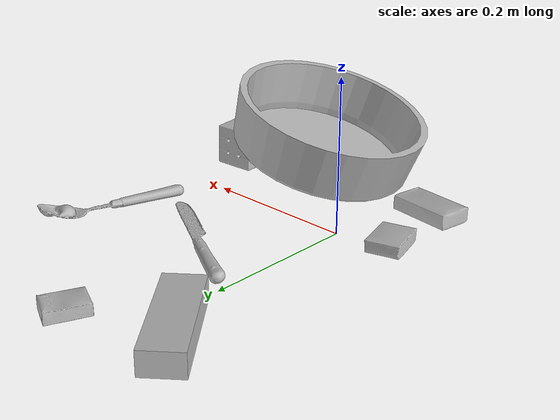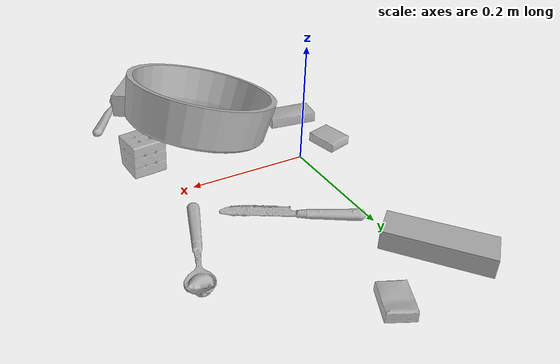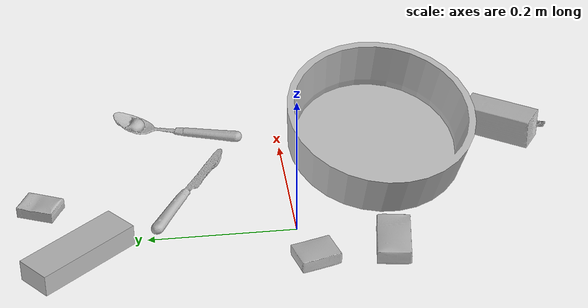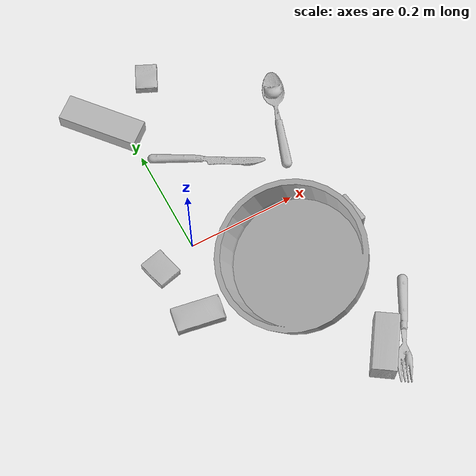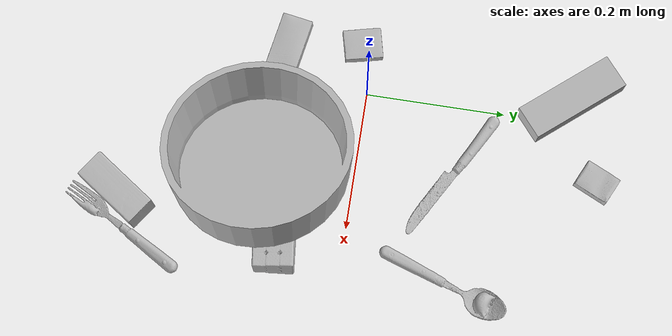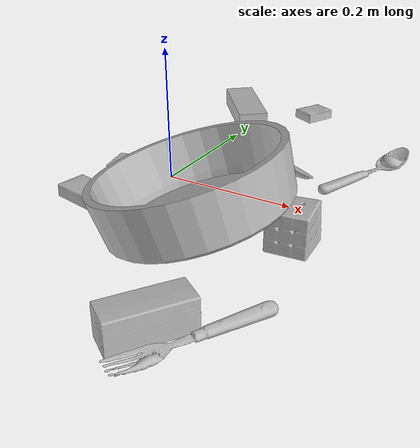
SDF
<sdf version="1.4">
  <world name="default">
    <light name="light1" type="point">
      <pose>0 0 1 0 0 0</pose>
      <diffuse>3 3 3 1</diffuse>
      <specular>3 3 3 1</specular>
    </light>
    <light name="light2" type="point">
      <pose>0 0.5 2 0 0 0</pose>
      <diffuse>1 1 1 1</diffuse>
      <specular>1 1 1 1</specular>
    </light>
    <light name="light3" type="point">
      <pose>0 0.5 2 0 0 0</pose>
      <diffuse>3 3 3 1</diffuse>
      <specular>3 3 3 1</specular>
    </light>
    <scene>
      <ambient>0.7 0.7 0.7</ambient>
    </scene>
    <model name="box11">
      <link name="link_box11">
        <collision name="default">
          <geometry>
            <mesh>
              <uri>model://cracker_box/collision_meshes/collision.obj</uri>
              <scale>0.25 0.25 0.25</scale>
            </mesh>
          </geometry>
          <surface>
            <friction>
              <ode>
                <mu>0.5</mu>
                <mu2>0.5</mu2>
              </ode>
            </friction>
          <contact>
        <ode>
            <max_vel>0</max_vel>
            <min_depth>0.0001</min_depth>
            <kp>1e8</kp>
        </ode>
    </contact></surface>
        </collision>
        <visual name="default">
          <geometry>
            <mesh>
              <uri>model://cracker_box/visual_meshes/visual.dae</uri>
              <scale>0.25 0.25 0.25</scale>
            </mesh>
          </geometry>
        </visual>
        <inertial>
          <mass>0.04448898881673813</mass>
          <pose>0.00023660270380787551 6.358561950037256e-05 -0.000425738311605528 -0.00031620780372907927 -0.011106488668730609 0.002546795468482302</pose>
          <inertia>
            <ixx>7.0725087e-06</ixx>
            <iyy>1.1678099e-05</iyy>
            <izz>1.666572e-05</izz>
            <ixy>0</ixy>
            <ixz>0</ixz>
            <iyz>0</iyz>
          </inertia>
        </inertial>
      </link>
      <pose>0.08152234554290771 0.3423035144805908 0.009096031077206135 -0.014050329316473468 -0.00501684645902855 -2.0076884614087827</pose>
    </model>
    <model name="box12">
      <link name="link_box12">
        <collision name="default">
          <geometry>
            <mesh>
              <uri>model://wood_block/collision_meshes/collision.obj</uri>
              <scale>0.5 0.5 0.5</scale>
            </mesh>
          </geometry>
          <surface>
            <friction>
              <ode>
                <mu>0.5</mu>
                <mu2>0.5</mu2>
              </ode>
            </friction>
          <contact>
        <ode>
            <max_vel>0</max_vel>
            <min_depth>0.0001</min_depth>
            <kp>1e8</kp>
        </ode>
    </contact></surface>
        </collision>
        <visual name="default">
          <geometry>
            <mesh>
              <uri>model://wood_block/visual_meshes/visual.dae</uri>
              <scale>0.5 0.5 0.5</scale>
            </mesh>
          </geometry>
        </visual>
        <inertial>
          <mass>0.30308207869529724</mass>
          <pose>-2.906657982748584e-06 -0.000285404734313488 0.00013204291462898254 -0.05220975528484064 -0.0051926956083073895 -0.006861380255216688</pose>
          <inertia>
            <ixx>0.00010139242</ixx>
            <iyy>0.00032029866</iyy>
            <izz>0.0003191006</izz>
            <ixy>0</ixy>
            <ixz>0</ixz>
            <iyz>0</iyz>
          </inertia>
        </inertial>
      </link>
      <pose>0.19884632527828217 -0.3269858956336975 0.022629274055361748 -0.005208361130615389 0.005718755320735575 -2.1695912662867967</pose>
    </model>
    <model name="box13">
      <link name="link_box13">
        <collision name="default">
          <geometry>
            <mesh>
              <uri>model://pudding_box/collision_meshes/collision.obj</uri>
              <scale>0.5 0.5 0.5</scale>
            </mesh>
          </geometry>
          <surface>
            <friction>
              <ode>
                <mu>0.5</mu>
                <mu2>0.5</mu2>
              </ode>
            </friction>
          <contact>
        <ode>
            <max_vel>0</max_vel>
            <min_depth>0.0001</min_depth>
            <kp>1e8</kp>
        </ode>
    </contact></surface>
        </collision>
        <visual name="default">
          <geometry>
            <mesh>
              <uri>model://pudding_box/visual_meshes/visual.dae</uri>
              <scale>0.5 0.5 0.5</scale>
            </mesh>
          </geometry>
        </visual>
        <inertial>
          <mass>0.06630203872919083</mass>
          <pose>0.00024474109522998333 0.00040339428232982755 -0.00025944141088984907 0.0052131027026664865 -0.006603797821229493 0.02007983447369903</pose>
          <inertia>
            <ixx>1.873776e-05</ixx>
            <iyy>1.2606899e-05</iyy>
            <izz>2.7671198e-05</izz>
            <ixy>0</ixy>
            <ixz>0</ixz>
            <iyz>0</iyz>
          </inertia>
        </inertial>
      </link>
      <pose>-0.07011728733778 -0.016386380419135094 0.009862907230854034 0.022348509699175262 -0.011391789922157908 -2.9014343653932935</pose>
    </model>
    <model name="box21">
      <link name="link_box21">
        <collision name="default">
          <geometry>
            <mesh>
              <uri>model://sugar_box/collision_meshes/collision.obj</uri>
              <scale>0.5 0.5 0.5</scale>
            </mesh>
          </geometry>
          <surface>
            <friction>
              <ode>
                <mu>0.5</mu>
                <mu2>0.5</mu2>
              </ode>
            </friction>
          <contact>
        <ode>
            <max_vel>0</max_vel>
            <min_depth>0.0001</min_depth>
            <kp>1e8</kp>
        </ode>
    </contact></surface>
        </collision>
        <visual name="default">
          <geometry>
            <mesh>
              <uri>model://sugar_box/visual_meshes/visual.dae</uri>
              <scale>0.5 0.5 0.5</scale>
            </mesh>
          </geometry>
        </visual>
        <inertial>
          <mass>0.09398066252470016</mass>
          <pose>0.0005171863595023751 1.924554817378521e-05 -0.00018182402709499002 -0.00040462650409139634 0.0010506636387973133 0.002615378555960767</pose>
          <inertia>
            <ixx>1.9576108e-05</ixx>
            <iyy>6.3274e-05</iyy>
            <izz>7.574653e-05</izz>
            <ixy>0</ixy>
            <ixz>0</ixz>
            <iyz>0</iyz>
          </inertia>
        </inertial>
      </link>
      <pose>-0.05180475488305092 -0.1231142058968544 0.011399301700294018 0.0007746736213091742 -0.0234330053743778 2.971114866086103</pose>
    </model>
    <model name="box22">
      <link name="link_box22">
        <collision name="default">
          <geometry>
            <mesh>
              <uri>model://jenga/collision_meshes/collision.obj</uri>
              <scale>1.0 1.0 1.0</scale>
            </mesh>
          </geometry>
          <surface>
            <friction>
              <ode>
                <mu>0.5</mu>
                <mu2>0.5</mu2>
              </ode>
            </friction>
          <contact>
        <ode>
            <max_vel>0</max_vel>
            <min_depth>0.0001</min_depth>
            <kp>1e8</kp>
        </ode>
    </contact></surface>
        </collision>
        <visual name="default">
          <geometry>
            <mesh>
              <uri>model://jenga/visual_meshes/visual.dae</uri>
              <scale>1.0 1.0 1.0</scale>
            </mesh>
          </geometry>
        </visual>
        <inertial>
          <mass>0.2620435655117035</mass>
          <pose>-2.5028555228345795e-07 -0.0001025000965455547 -4.092339804628864e-05 0.0 -7.342154049184251e-07 0.0</pose>
          <inertia>
            <ixx>7.251381e-05</ixx>
            <iyy>0.0004913516</iyy>
            <izz>0.00052455964</izz>
            <ixy>0</ixy>
            <ixz>0</ixz>
            <iyz>0</iyz>
          </inertia>
        </inertial>
      </link>
      <pose>-0.033749550580978394 0.29149317741394043 0.015000000596046448 4.5758320699838044e-09 -1.1243501470796746e-09 2.264430610078347</pose>
    </model>
    <model name="box23">
      <link name="link_box23">
        <collision name="default">
          <geometry>
            <mesh>
              <uri>model://rubiks_cube/collision_meshes/collision.obj</uri>
              <scale>1.0 1.0 1.0</scale>
            </mesh>
          </geometry>
          <surface>
            <friction>
              <ode>
                <mu>0.5</mu>
                <mu2>0.5</mu2>
              </ode>
            </friction>
          <contact>
        <ode>
            <max_vel>0</max_vel>
            <min_depth>0.0001</min_depth>
            <kp>1e8</kp>
        </ode>
    </contact></surface>
        </collision>
        <visual name="default">
          <geometry>
            <mesh>
              <uri>model://rubiks_cube/visual_meshes/visual.dae</uri>
              <scale>1.0 1.0 1.0</scale>
            </mesh>
          </geometry>
        </visual>
        <inertial>
          <mass>0.1897622048854828</mass>
          <pose>2.6721043468569405e-05 5.256967051536776e-05 -7.264316082000732e-06 -0.054673156626660294 -0.09814014504853939 -0.034453657529750985</pose>
          <inertia>
            <ixx>0.00010485636</ixx>
            <iyy>0.00010436737</iyy>
            <izz>0.000105725274</izz>
            <ixy>0</ixy>
            <ixz>0</ixz>
            <iyz>0</iyz>
          </inertia>
        </inertial>
      </link>
      <pose>0.25009992718696594 -0.093434639275074 0.028683576732873917 0.0002152937990656864 6.928026128922339e-05 -1.4369675818874121</pose>
    </model>
    <model name="plate1">
      <link name="link_plate1">
        <collision name="default">
          <geometry>
            <mesh>
              <uri>model://pan_tefal/collision_meshes/collision.obj</uri>
              <scale>1.0 1.0 1.0</scale>
            </mesh>
          </geometry>
          <surface>
            <friction>
              <ode>
                <mu>0.5</mu>
                <mu2>0.5</mu2>
              </ode>
            </friction>
          <contact>
        <ode>
            <max_vel>0</max_vel>
            <min_depth>0.0001</min_depth>
            <kp>1e8</kp>
        </ode>
    </contact></surface>
        </collision>
        <visual name="default">
          <geometry>
            <mesh>
              <uri>model://pan_tefal/visual_meshes/visual.dae</uri>
              <scale>1.0 1.0 1.0</scale>
            </mesh>
          </geometry>
        </visual>
        <inertial>
          <mass>0.8768928050994873</mass>
          <pose>-0.00018002584693022072 3.279091833974235e-05 -0.008514934219419956 0.0008190272128915226 -0.0003301349770144462 -0.3318573305948388</pose>
          <inertia>
            <ixx>0.0060531492</ixx>
            <iyy>0.006092174</iyy>
            <izz>0.011142679</izz>
            <ixy>0</ixy>
            <ixz>0</ixz>
            <iyz>0</iyz>
          </inertia>
        </inertial>
      </link>
      <pose>0.13068369030952454 -0.13222606480121613 0.06896573305130005 -0.19307289641174566 0.21006699054476022 2.618667815103454</pose>
    </model>
    <model name="silverware1">
      <link name="link_silverware1">
        <collision name="default">
          <geometry>
            <mesh>
              <uri>model://spoon/collision_meshes/collision.obj</uri>
              <scale>1.0 1.0 1.0</scale>
            </mesh>
          </geometry>
          <surface>
            <friction>
              <ode>
                <mu>0.5</mu>
                <mu2>0.5</mu2>
              </ode>
            </friction>
          <contact>
        <ode>
            <max_vel>0</max_vel>
            <min_depth>0.0001</min_depth>
            <kp>1e8</kp>
        </ode>
    </contact></surface>
        </collision>
        <visual name="default">
          <geometry>
            <mesh>
              <uri>model://spoon/visual_meshes/visual.dae</uri>
              <scale>1.0 1.0 1.0</scale>
            </mesh>
          </geometry>
        </visual>
        <inertial>
          <mass>0.030811671167612076</mass>
          <pose>-0.005526314955204725 -0.0016034170985221863 -0.0007271655485965312 0.03521832474385929 -0.03906585488360169 0.0061506134218646934</pose>
          <inertia>
            <ixx>1.713795e-06</ixx>
            <iyy>0.000117237374</iyy>
            <izz>0.00011808256</izz>
            <ixy>0</ixy>
            <ixz>0</ixz>
            <iyz>0</iyz>
          </inertia>
        </inertial>
      </link>
      <pose>0.2546190917491913 0.14626343548297882 0.008385262452065945 0.006731739737105965 0.026892997913828057 1.2272809488469072</pose>
    </model>
    <model name="silverware2">
      <link name="link_silverware2">
        <collision name="default">
          <geometry>
            <mesh>
              <uri>model://fork/collision_meshes/collision.obj</uri>
              <scale>1.0 1.0 1.0</scale>
            </mesh>
          </geometry>
          <surface>
            <friction>
              <ode>
                <mu>0.5</mu>
                <mu2>0.5</mu2>
              </ode>
            </friction>
          <contact>
        <ode>
            <max_vel>0</max_vel>
            <min_depth>0.0001</min_depth>
            <kp>1e8</kp>
        </ode>
    </contact></surface>
        </collision>
        <visual name="default">
          <geometry>
            <mesh>
              <uri>model://fork/visual_meshes/visual.dae</uri>
              <scale>1.0 1.0 1.0</scale>
            </mesh>
          </geometry>
        </visual>
        <inertial>
          <mass>0.016358599066734314</mass>
          <pose>-0.029570044949650764 0.00046588238910771906 0.0003218862693756819 -0.013550710307666105 -0.010977838412833367 0.014453905587424366</pose>
          <inertia>
            <ixx>5.7346136e-07</ixx>
            <iyy>4.270759e-05</iyy>
            <izz>4.29641e-05</izz>
            <ixy>0</ixy>
            <ixz>0</ixz>
            <iyz>0</iyz>
          </inertia>
        </inertial>
      </link>
      <pose>0.24763567745685577 -0.31118232011795044 0.005686966236680746 -0.17396899931150248 0.025995006692130635 -2.0926005189031653</pose>
    </model>
    <model name="silverware3">
      <link name="link_silverware3">
        <collision name="default">
          <geometry>
            <mesh>
              <uri>model://knife/collision_meshes/collision.obj</uri>
              <scale>1.0 1.0 1.0</scale>
            </mesh>
          </geometry>
          <surface>
            <friction>
              <ode>
                <mu>0.5</mu>
                <mu2>0.5</mu2>
              </ode>
            </friction>
          <contact>
        <ode>
            <max_vel>0</max_vel>
            <min_depth>0.0001</min_depth>
            <kp>1e8</kp>
        </ode>
    </contact></surface>
        </collision>
        <visual name="default">
          <geometry>
            <mesh>
              <uri>model://knife/visual_meshes/visual.dae</uri>
              <scale>1.0 1.0 1.0</scale>
            </mesh>
          </geometry>
        </visual>
        <inertial>
          <mass>0.02715744450688362</mass>
          <pose>-0.023785259574651718 0.0015275124460458755 5.062024501967244e-05 0.07304743927496513 0.01724841757037888 -0.007409820832494391</pose>
          <inertia>
            <ixx>7.708383e-07</ixx>
            <iyy>0.00010433449</iyy>
            <izz>0.00010458276</izz>
            <ixy>0</ixy>
            <ixz>0</ixz>
            <iyz>0</iyz>
          </inertia>
        </inertial>
      </link>
      <pose>0.10056979209184647 0.13627417385578156 0.008136812597513199 -0.2817475390038379 -0.00887164288936713 -0.5174952435604971</pose>
    </model>
  <physics type="ode">
      <max_contacts>50</max_contacts>
      <ode>
        <solver>
          <type>quick</type>
          <iters>75</iters>
        </solver>
        <constraints>
          <contact_max_correcting_vel>0</contact_max_correcting_vel>
          <contact_surface_layer>0</contact_surface_layer>
        </constraints>
      </ode>
    </physics></world>
</sdf>
